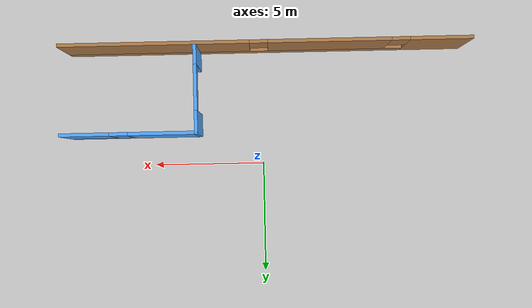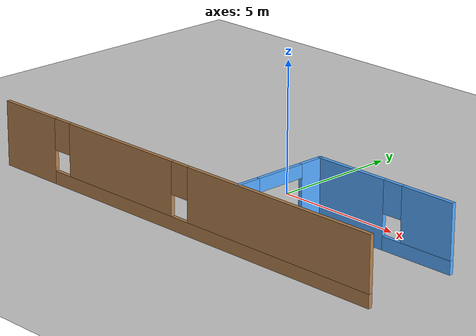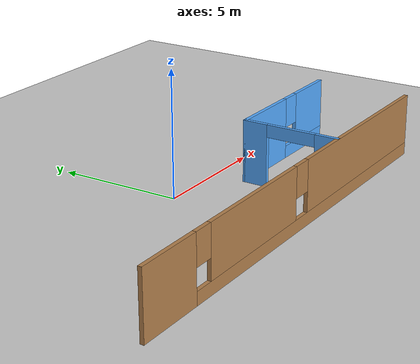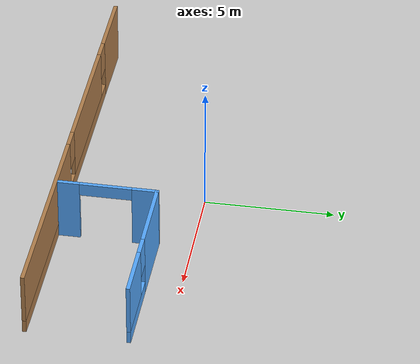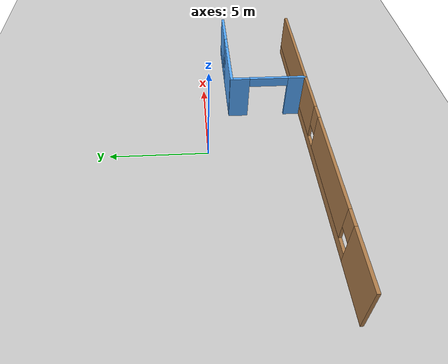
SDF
<sdf version="1.6">
 <world name="default">
  <model name="ground_plane">
   <static>1</static>
   <link name="link">
    <collision name="collision">
     <geometry><plane><normal>0 0 1</normal><size>100 100</size></plane></geometry>
     <surface><friction><ode><mu>100</mu><mu2>50</mu2></ode></friction></surface>
    </collision>
    <visual name="visual">
     <cast_shadows>0</cast_shadows>
     <geometry><plane><normal>0 0 1</normal><size>100 100</size></plane></geometry>
     <material>
      <script><uri>file://media/materials/scripts/gazebo.material</uri><name>Gazebo/Grey</name></script>
     </material>
    </visual>
   </link>
  </model>
  <model name="mybuilding">
   <link name="Wall_26">
    <pose>0.01789 -5.925 0 0 -0 0</pose>
    <visual name="Wall_26_Visual_0">
     <pose>-7.63172 0 1.25 0 -0 0</pose>
     <geometry><box><size>2.73657 0.15 2.5</size></box></geometry>
     <material>
      <script><uri>file://media/materials/scripts/gazebo.material</uri><name>Gazebo/Wood</name></script>
      <ambient>1 1 1 1</ambient>
      <shader type="pixel"/>
      <diffuse>1 1 1 1</diffuse>
      <specular>0.2 0.2 0.2 1</specular>
      <emissive>0 0 0 1</emissive>
     </material>
     <meta><layer>0</layer></meta>
    </visual>
    <visual name="Wall_26_Visual_1">
     <pose>1.36828 0 0.25 0 -0 0</pose>
     <geometry><box><size>15.2634 0.15 0.5</size></box></geometry>
     <material>
      <script><uri>file://media/materials/scripts/gazebo.material</uri><name>Gazebo/Wood</name></script>
      <ambient>1 1 1 1</ambient>
      <shader type="pixel"/>
      <diffuse>1 1 1 1</diffuse>
      <specular>0.2 0.2 0.2 1</specular>
      <emissive>0 0 0 1</emissive>
     </material>
     <meta><layer>0</layer></meta>
    </visual>
    <visual name="Wall_26_Visual_2">
     <pose>-2.78311 0 1.5 0 -0 0</pose>
     <geometry><box><size>5.36064 0.15 2</size></box></geometry>
     <material>
      <script><uri>file://media/materials/scripts/gazebo.material</uri><name>Gazebo/Wood</name></script>
      <ambient>1 1 1 1</ambient>
      <shader type="pixel"/>
      <diffuse>1 1 1 1</diffuse>
      <specular>0.2 0.2 0.2 1</specular>
      <emissive>0 0 0 1</emissive>
     </material>
     <meta><layer>0</layer></meta>
    </visual>
    <visual name="Wall_26_Visual_3">
     <pose>4.8486 0 1.5 0 -0 0</pose>
     <geometry><box><size>8.3028 0.15 2</size></box></geometry>
     <material>
      <script><uri>file://media/materials/scripts/gazebo.material</uri><name>Gazebo/Wood</name></script>
      <ambient>1 1 1 1</ambient>
      <shader type="pixel"/>
      <diffuse>1 1 1 1</diffuse>
      <specular>0.2 0.2 0.2 1</specular>
      <emissive>0 0 0 1</emissive>
     </material>
     <meta><layer>0</layer></meta>
    </visual>
    <visual name="Wall_26_Visual_4">
     <pose>-5.86343 0 1.9 0 -0 0</pose>
     <geometry><box><size>0.8 0.15 1.2</size></box></geometry>
     <material>
      <script><uri>file://media/materials/scripts/gazebo.material</uri><name>Gazebo/Wood</name></script>
      <ambient>1 1 1 1</ambient>
      <shader type="pixel"/>
      <diffuse>1 1 1 1</diffuse>
      <specular>0.2 0.2 0.2 1</specular>
      <emissive>0 0 0 1</emissive>
     </material>
     <meta><layer>0</layer></meta>
    </visual>
    <visual name="Wall_26_Visual_5">
     <pose>0.297204 0 1.9 0 -0 0</pose>
     <geometry><box><size>0.8 0.15 1.2</size></box></geometry>
     <material>
      <script><uri>file://media/materials/scripts/gazebo.material</uri><name>Gazebo/Wood</name></script>
      <ambient>1 1 1 1</ambient>
      <shader type="pixel"/>
      <diffuse>1 1 1 1</diffuse>
      <specular>0.2 0.2 0.2 1</specular>
      <emissive>0 0 0 1</emissive>
     </material>
     <meta><layer>0</layer></meta>
    </visual>
    <collision name="Wall_26_Collision_0">
     <pose>-7.63172 0 1.25 0 -0 0</pose>
     <geometry><box><size>2.73657 0.15 2.5</size></box></geometry>
     <surface>
      <friction>
       <ode><mu>1</mu><mu2>1</mu2><fdir1>0 0 0</fdir1><slip1>0</slip1><slip2>0</slip2></ode>
       <torsional>
        <coefficient>1</coefficient>
        <patch_radius>0</patch_radius>
        <surface_radius>0</surface_radius>
        <use_patch_radius>1</use_patch_radius>
        <ode><slip>0</slip></ode>
       </torsional>
      </friction>
      <bounce><restitution_coefficient>0</restitution_coefficient><threshold>1e+06</threshold></bounce>
      <contact>
       <collide_without_contact>0</collide_without_contact>
       <collide_without_contact_bitmask>1</collide_without_contact_bitmask>
       <collide_bitmask>1</collide_bitmask>
       <ode>
        <soft_cfm>0</soft_cfm>
        <soft_erp>0.2</soft_erp>
        <kp>1e+13</kp>
        <kd>1</kd>
        <max_vel>0.01</max_vel>
        <min_depth>0</min_depth>
       </ode>
       <bullet>
        <split_impulse>1</split_impulse>
        <split_impulse_penetration_threshold>-0.01</split_impulse_penetration_threshold>
        <soft_cfm>0</soft_cfm>
        <soft_erp>0.2</soft_erp>
        <kp>1e+13</kp>
        <kd>1</kd>
       </bullet>
      </contact>
     </surface>
    </collision>
    <collision name="Wall_26_Collision_1">
     <pose>1.36828 0 0.25 0 -0 0</pose>
     <geometry><box><size>15.2634 0.15 0.5</size></box></geometry>
     <surface>
      <friction>
       <ode><mu>1</mu><mu2>1</mu2><fdir1>0 0 0</fdir1><slip1>0</slip1><slip2>0</slip2></ode>
       <torsional>
        <coefficient>1</coefficient>
        <patch_radius>0</patch_radius>
        <surface_radius>0</surface_radius>
        <use_patch_radius>1</use_patch_radius>
        <ode><slip>0</slip></ode>
       </torsional>
      </friction>
      <bounce><restitution_coefficient>0</restitution_coefficient><threshold>1e+06</threshold></bounce>
      <contact>
       <collide_without_contact>0</collide_without_contact>
       <collide_without_contact_bitmask>1</collide_without_contact_bitmask>
       <collide_bitmask>1</collide_bitmask>
       <ode>
        <soft_cfm>0</soft_cfm>
        <soft_erp>0.2</soft_erp>
        <kp>1e+13</kp>
        <kd>1</kd>
        <max_vel>0.01</max_vel>
        <min_depth>0</min_depth>
       </ode>
       <bullet>
        <split_impulse>1</split_impulse>
        <split_impulse_penetration_threshold>-0.01</split_impulse_penetration_threshold>
        <soft_cfm>0</soft_cfm>
        <soft_erp>0.2</soft_erp>
        <kp>1e+13</kp>
        <kd>1</kd>
       </bullet>
      </contact>
     </surface>
    </collision>
    <collision name="Wall_26_Collision_2">
     <pose>-2.78311 0 1.5 0 -0 0</pose>
     <geometry><box><size>5.36064 0.15 2</size></box></geometry>
     <surface>
      <friction>
       <ode><mu>1</mu><mu2>1</mu2><fdir1>0 0 0</fdir1><slip1>0</slip1><slip2>0</slip2></ode>
       <torsional>
        <coefficient>1</coefficient>
        <patch_radius>0</patch_radius>
        <surface_radius>0</surface_radius>
        <use_patch_radius>1</use_patch_radius>
        <ode><slip>0</slip></ode>
       </torsional>
      </friction>
      <bounce><restitution_coefficient>0</restitution_coefficient><threshold>1e+06</threshold></bounce>
      <contact>
       <collide_without_contact>0</collide_without_contact>
       <collide_without_contact_bitmask>1</collide_without_contact_bitmask>
       <collide_bitmask>1</collide_bitmask>
       <ode>
        <soft_cfm>0</soft_cfm>
        <soft_erp>0.2</soft_erp>
        <kp>1e+13</kp>
        <kd>1</kd>
        <max_vel>0.01</max_vel>
        <min_depth>0</min_depth>
       </ode>
       <bullet>
        <split_impulse>1</split_impulse>
        <split_impulse_penetration_threshold>-0.01</split_impulse_penetration_threshold>
        <soft_cfm>0</soft_cfm>
        <soft_erp>0.2</soft_erp>
        <kp>1e+13</kp>
        <kd>1</kd>
       </bullet>
      </contact>
     </surface>
    </collision>
    <collision name="Wall_26_Collision_3">
     <pose>4.8486 0 1.5 0 -0 0</pose>
     <geometry><box><size>8.3028 0.15 2</size></box></geometry>
     <surface>
      <friction>
       <ode><mu>1</mu><mu2>1</mu2><fdir1>0 0 0</fdir1><slip1>0</slip1><slip2>0</slip2></ode>
       <torsional>
        <coefficient>1</coefficient>
        <patch_radius>0</patch_radius>
        <surface_radius>0</surface_radius>
        <use_patch_radius>1</use_patch_radius>
        <ode><slip>0</slip></ode>
       </torsional>
      </friction>
      <bounce><restitution_coefficient>0</restitution_coefficient><threshold>1e+06</threshold></bounce>
      <contact>
       <collide_without_contact>0</collide_without_contact>
       <collide_without_contact_bitmask>1</collide_without_contact_bitmask>
       <collide_bitmask>1</collide_bitmask>
       <ode>
        <soft_cfm>0</soft_cfm>
        <soft_erp>0.2</soft_erp>
        <kp>1e+13</kp>
        <kd>1</kd>
        <max_vel>0.01</max_vel>
        <min_depth>0</min_depth>
       </ode>
       <bullet>
        <split_impulse>1</split_impulse>
        <split_impulse_penetration_threshold>-0.01</split_impulse_penetration_threshold>
        <soft_cfm>0</soft_cfm>
        <soft_erp>0.2</soft_erp>
        <kp>1e+13</kp>
        <kd>1</kd>
       </bullet>
      </contact>
     </surface>
    </collision>
    <collision name="Wall_26_Collision_4">
     <pose>-5.86343 0 1.9 0 -0 0</pose>
     <geometry><box><size>0.8 0.15 1.2</size></box></geometry>
     <surface>
      <friction>
       <ode><mu>1</mu><mu2>1</mu2><fdir1>0 0 0</fdir1><slip1>0</slip1><slip2>0</slip2></ode>
       <torsional>
        <coefficient>1</coefficient>
        <patch_radius>0</patch_radius>
        <surface_radius>0</surface_radius>
        <use_patch_radius>1</use_patch_radius>
        <ode><slip>0</slip></ode>
       </torsional>
      </friction>
      <bounce><restitution_coefficient>0</restitution_coefficient><threshold>1e+06</threshold></bounce>
      <contact>
       <collide_without_contact>0</collide_without_contact>
       <collide_without_contact_bitmask>1</collide_without_contact_bitmask>
       <collide_bitmask>1</collide_bitmask>
       <ode>
        <soft_cfm>0</soft_cfm>
        <soft_erp>0.2</soft_erp>
        <kp>1e+13</kp>
        <kd>1</kd>
        <max_vel>0.01</max_vel>
        <min_depth>0</min_depth>
       </ode>
       <bullet>
        <split_impulse>1</split_impulse>
        <split_impulse_penetration_threshold>-0.01</split_impulse_penetration_threshold>
        <soft_cfm>0</soft_cfm>
        <soft_erp>0.2</soft_erp>
        <kp>1e+13</kp>
        <kd>1</kd>
       </bullet>
      </contact>
     </surface>
    </collision>
    <collision name="Wall_26_Collision_5">
     <pose>0.297204 0 1.9 0 -0 0</pose>
     <geometry><box><size>0.8 0.15 1.2</size></box></geometry>
     <surface>
      <friction>
       <ode><mu>1</mu><mu2>1</mu2><fdir1>0 0 0</fdir1><slip1>0</slip1><slip2>0</slip2></ode>
       <torsional>
        <coefficient>1</coefficient>
        <patch_radius>0</patch_radius>
        <surface_radius>0</surface_radius>
        <use_patch_radius>1</use_patch_radius>
        <ode><slip>0</slip></ode>
       </torsional>
      </friction>
      <bounce><restitution_coefficient>0</restitution_coefficient><threshold>1e+06</threshold></bounce>
      <contact>
       <collide_without_contact>0</collide_without_contact>
       <collide_without_contact_bitmask>1</collide_without_contact_bitmask>
       <collide_bitmask>1</collide_bitmask>
       <ode>
        <soft_cfm>0</soft_cfm>
        <soft_erp>0.2</soft_erp>
        <kp>1e+13</kp>
        <kd>1</kd>
        <max_vel>0.01</max_vel>
        <min_depth>0</min_depth>
       </ode>
       <bullet>
        <split_impulse>1</split_impulse>
        <split_impulse_penetration_threshold>-0.01</split_impulse_penetration_threshold>
        <soft_cfm>0</soft_cfm>
        <soft_erp>0.2</soft_erp>
        <kp>1e+13</kp>
        <kd>1</kd>
       </bullet>
      </contact>
     </surface>
    </collision>
   </link>
   <link name="Wall_39">
    <pose>3.08427 -3.97901 0 0 -0 1.5708</pose>
    <visual name="Wall_39_Visual_0">
     <pose>-1.51351 0 1.25 0 -0 0</pose>
     <geometry><box><size>0.972974 0.15 2.5</size></box></geometry>
     <material>
      <script><uri>file://media/materials/scripts/gazebo.material</uri><name>Gazebo/Grey</name></script>
      <ambient>0.333333 0.666667 1 1</ambient>
      <shader type="pixel"/>
      <diffuse>0.7 0.7 0.7 1</diffuse>
      <specular>0.01 0.01 0.01 1</specular>
      <emissive>0 0 0 1</emissive>
     </material>
     <meta><layer>0</layer></meta>
    </visual>
    <visual name="Wall_39_Visual_1">
     <pose>1.48649 0 1.25 0 -0 0</pose>
     <geometry><box><size>1.02703 0.15 2.5</size></box></geometry>
     <material>
      <script><uri>file://media/materials/scripts/gazebo.material</uri><name>Gazebo/Grey</name></script>
      <ambient>0.333333 0.666667 1 1</ambient>
      <shader type="pixel"/>
      <diffuse>0.7 0.7 0.7 1</diffuse>
      <specular>0.01 0.01 0.01 1</specular>
      <emissive>0 0 0 1</emissive>
     </material>
     <meta><layer>0</layer></meta>
    </visual>
    <visual name="Wall_39_Visual_2">
     <pose>-0.027026 0 2.25 0 -0 0</pose>
     <geometry><box><size>2 0.15 0.5</size></box></geometry>
     <material>
      <script><uri>file://media/materials/scripts/gazebo.material</uri><name>Gazebo/Grey</name></script>
      <ambient>0.333333 0.666667 1 1</ambient>
      <shader type="pixel"/>
      <diffuse>0.7 0.7 0.7 1</diffuse>
      <specular>0.01 0.01 0.01 1</specular>
      <emissive>0 0 0 1</emissive>
     </material>
     <meta><layer>0</layer></meta>
    </visual>
    <collision name="Wall_39_Collision_0">
     <pose>-1.51351 0 1.25 0 -0 0</pose>
     <geometry><box><size>0.972974 0.15 2.5</size></box></geometry>
     <surface>
      <friction>
       <ode><mu>1</mu><mu2>1</mu2><fdir1>0 0 0</fdir1><slip1>0</slip1><slip2>0</slip2></ode>
       <torsional>
        <coefficient>1</coefficient>
        <patch_radius>0</patch_radius>
        <surface_radius>0</surface_radius>
        <use_patch_radius>1</use_patch_radius>
        <ode><slip>0</slip></ode>
       </torsional>
      </friction>
      <bounce><restitution_coefficient>0</restitution_coefficient><threshold>1e+06</threshold></bounce>
      <contact>
       <collide_without_contact>0</collide_without_contact>
       <collide_without_contact_bitmask>1</collide_without_contact_bitmask>
       <collide_bitmask>1</collide_bitmask>
       <ode>
        <soft_cfm>0</soft_cfm>
        <soft_erp>0.2</soft_erp>
        <kp>1e+13</kp>
        <kd>1</kd>
        <max_vel>0.01</max_vel>
        <min_depth>0</min_depth>
       </ode>
       <bullet>
        <split_impulse>1</split_impulse>
        <split_impulse_penetration_threshold>-0.01</split_impulse_penetration_threshold>
        <soft_cfm>0</soft_cfm>
        <soft_erp>0.2</soft_erp>
        <kp>1e+13</kp>
        <kd>1</kd>
       </bullet>
      </contact>
     </surface>
    </collision>
    <collision name="Wall_39_Collision_2">
     <pose>-0.027026 0 2.25 0 -0 0</pose>
     <geometry><box><size>2 0.15 0.5</size></box></geometry>
     <surface>
      <friction>
       <ode><mu>1</mu><mu2>1</mu2><fdir1>0 0 0</fdir1><slip1>0</slip1><slip2>0</slip2></ode>
       <torsional>
        <coefficient>1</coefficient>
        <patch_radius>0</patch_radius>
        <surface_radius>0</surface_radius>
        <use_patch_radius>1</use_patch_radius>
        <ode><slip>0</slip></ode>
       </torsional>
      </friction>
      <bounce><restitution_coefficient>0</restitution_coefficient><threshold>1e+06</threshold></bounce>
      <contact>
       <collide_without_contact>0</collide_without_contact>
       <collide_without_contact_bitmask>1</collide_without_contact_bitmask>
       <collide_bitmask>1</collide_bitmask>
       <ode>
        <soft_cfm>0</soft_cfm>
        <soft_erp>0.2</soft_erp>
        <kp>1e+13</kp>
        <kd>1</kd>
        <max_vel>0.01</max_vel>
        <min_depth>0</min_depth>
       </ode>
       <bullet>
        <split_impulse>1</split_impulse>
        <split_impulse_penetration_threshold>-0.01</split_impulse_penetration_threshold>
        <soft_cfm>0</soft_cfm>
        <soft_erp>0.2</soft_erp>
        <kp>1e+13</kp>
        <kd>1</kd>
       </bullet>
      </contact>
     </surface>
    </collision>
    <collision name="Wall_39_Collision_1">
     <pose>1.48649 0 1.25 0 -0 0</pose>
     <geometry><box><size>1.02703 0.15 2.5</size></box></geometry>
     <surface>
      <friction>
       <ode><mu>1</mu><mu2>1</mu2><fdir1>0 0 0</fdir1><slip1>0</slip1><slip2>0</slip2></ode>
       <torsional>
        <coefficient>1</coefficient>
        <patch_radius>0</patch_radius>
        <surface_radius>0</surface_radius>
        <use_patch_radius>1</use_patch_radius>
        <ode><slip>0</slip></ode>
       </torsional>
      </friction>
      <bounce><restitution_coefficient>0</restitution_coefficient><threshold>1e+06</threshold></bounce>
      <contact>
       <collide_without_contact>0</collide_without_contact>
       <collide_without_contact_bitmask>1</collide_without_contact_bitmask>
       <collide_bitmask>1</collide_bitmask>
       <ode>
        <soft_cfm>0</soft_cfm>
        <soft_erp>0.2</soft_erp>
        <kp>1e+13</kp>
        <kd>1</kd>
        <max_vel>0.01</max_vel>
        <min_depth>0</min_depth>
       </ode>
       <bullet>
        <split_impulse>1</split_impulse>
        <split_impulse_penetration_threshold>-0.01</split_impulse_penetration_threshold>
        <soft_cfm>0</soft_cfm>
        <soft_erp>0.2</soft_erp>
        <kp>1e+13</kp>
        <kd>1</kd>
       </bullet>
      </contact>
     </surface>
    </collision>
   </link>
   <link name="Wall_40">
    <pose>6.00927 -2.05401 0 0 -0 0</pose>
    <visual name="Wall_40_Visual_0">
     <pose>-1.48233 0 1.25 0 -0 0</pose>
     <geometry><box><size>3.03535 0.15 2.5</size></box></geometry>
     <material>
      <script><uri>file://media/materials/scripts/gazebo.material</uri><name>Gazebo/Grey</name></script>
      <ambient>0.333333 0.666667 1 1</ambient>
      <shader type="pixel"/>
      <diffuse>0.7 0.7 0.7 1</diffuse>
      <specular>0.01 0.01 0.01 1</specular>
      <emissive>0 0 0 1</emissive>
     </material>
     <meta><layer>0</layer></meta>
    </visual>
    <visual name="Wall_40_Visual_1">
     <pose>1.51767 0 0.25 0 -0 0</pose>
     <geometry><box><size>2.96465 0.15 0.5</size></box></geometry>
     <material>
      <script><uri>file://media/materials/scripts/gazebo.material</uri><name>Gazebo/Grey</name></script>
      <ambient>0.333333 0.666667 1 1</ambient>
      <shader type="pixel"/>
      <diffuse>0.7 0.7 0.7 1</diffuse>
      <specular>0.01 0.01 0.01 1</specular>
      <emissive>0 0 0 1</emissive>
     </material>
     <meta><layer>0</layer></meta>
    </visual>
    <visual name="Wall_40_Visual_2">
     <pose>1.91767 0 1.5 0 -0 0</pose>
     <geometry><box><size>2.16465 0.15 2</size></box></geometry>
     <material>
      <script><uri>file://media/materials/scripts/gazebo.material</uri><name>Gazebo/Grey</name></script>
      <ambient>0.333333 0.666667 1 1</ambient>
      <shader type="pixel"/>
      <diffuse>0.7 0.7 0.7 1</diffuse>
      <specular>0.01 0.01 0.01 1</specular>
      <emissive>0 0 0 1</emissive>
     </material>
     <meta><layer>0</layer></meta>
    </visual>
    <visual name="Wall_40_Visual_3">
     <pose>0.435348 0 1.9 0 -0 0</pose>
     <geometry><box><size>0.8 0.15 1.2</size></box></geometry>
     <material>
      <script><uri>file://media/materials/scripts/gazebo.material</uri><name>Gazebo/Grey</name></script>
      <ambient>0.333333 0.666667 1 1</ambient>
      <shader type="pixel"/>
      <diffuse>0.7 0.7 0.7 1</diffuse>
      <specular>0.01 0.01 0.01 1</specular>
      <emissive>0 0 0 1</emissive>
     </material>
     <meta><layer>0</layer></meta>
    </visual>
    <collision name="Wall_40_Collision_0">
     <pose>-1.48233 0 1.25 0 -0 0</pose>
     <geometry><box><size>3.03535 0.15 2.5</size></box></geometry>
     <surface>
      <friction>
       <ode><mu>1</mu><mu2>1</mu2><fdir1>0 0 0</fdir1><slip1>0</slip1><slip2>0</slip2></ode>
       <torsional>
        <coefficient>1</coefficient>
        <patch_radius>0</patch_radius>
        <surface_radius>0</surface_radius>
        <use_patch_radius>1</use_patch_radius>
        <ode><slip>0</slip></ode>
       </torsional>
      </friction>
      <bounce><restitution_coefficient>0</restitution_coefficient><threshold>1e+06</threshold></bounce>
      <contact>
       <collide_without_contact>0</collide_without_contact>
       <collide_without_contact_bitmask>1</collide_without_contact_bitmask>
       <collide_bitmask>1</collide_bitmask>
       <ode>
        <soft_cfm>0</soft_cfm>
        <soft_erp>0.2</soft_erp>
        <kp>1e+13</kp>
        <kd>1</kd>
        <max_vel>0.01</max_vel>
        <min_depth>0</min_depth>
       </ode>
       <bullet>
        <split_impulse>1</split_impulse>
        <split_impulse_penetration_threshold>-0.01</split_impulse_penetration_threshold>
        <soft_cfm>0</soft_cfm>
        <soft_erp>0.2</soft_erp>
        <kp>1e+13</kp>
        <kd>1</kd>
       </bullet>
      </contact>
     </surface>
    </collision>
    <collision name="Wall_40_Collision_1">
     <pose>1.51767 0 0.25 0 -0 0</pose>
     <geometry><box><size>2.96465 0.15 0.5</size></box></geometry>
     <surface>
      <friction>
       <ode><mu>1</mu><mu2>1</mu2><fdir1>0 0 0</fdir1><slip1>0</slip1><slip2>0</slip2></ode>
       <torsional>
        <coefficient>1</coefficient>
        <patch_radius>0</patch_radius>
        <surface_radius>0</surface_radius>
        <use_patch_radius>1</use_patch_radius>
        <ode><slip>0</slip></ode>
       </torsional>
      </friction>
      <bounce><restitution_coefficient>0</restitution_coefficient><threshold>1e+06</threshold></bounce>
      <contact>
       <collide_without_contact>0</collide_without_contact>
       <collide_without_contact_bitmask>1</collide_without_contact_bitmask>
       <collide_bitmask>1</collide_bitmask>
       <ode>
        <soft_cfm>0</soft_cfm>
        <soft_erp>0.2</soft_erp>
        <kp>1e+13</kp>
        <kd>1</kd>
        <max_vel>0.01</max_vel>
        <min_depth>0</min_depth>
       </ode>
       <bullet>
        <split_impulse>1</split_impulse>
        <split_impulse_penetration_threshold>-0.01</split_impulse_penetration_threshold>
        <soft_cfm>0</soft_cfm>
        <soft_erp>0.2</soft_erp>
        <kp>1e+13</kp>
        <kd>1</kd>
       </bullet>
      </contact>
     </surface>
    </collision>
    <collision name="Wall_40_Collision_2">
     <pose>1.91767 0 1.5 0 -0 0</pose>
     <geometry><box><size>2.16465 0.15 2</size></box></geometry>
     <surface>
      <friction>
       <ode><mu>1</mu><mu2>1</mu2><fdir1>0 0 0</fdir1><slip1>0</slip1><slip2>0</slip2></ode>
       <torsional>
        <coefficient>1</coefficient>
        <patch_radius>0</patch_radius>
        <surface_radius>0</surface_radius>
        <use_patch_radius>1</use_patch_radius>
        <ode><slip>0</slip></ode>
       </torsional>
      </friction>
      <bounce><restitution_coefficient>0</restitution_coefficient><threshold>1e+06</threshold></bounce>
      <contact>
       <collide_without_contact>0</collide_without_contact>
       <collide_without_contact_bitmask>1</collide_without_contact_bitmask>
       <collide_bitmask>1</collide_bitmask>
       <ode>
        <soft_cfm>0</soft_cfm>
        <soft_erp>0.2</soft_erp>
        <kp>1e+13</kp>
        <kd>1</kd>
        <max_vel>0.01</max_vel>
        <min_depth>0</min_depth>
       </ode>
       <bullet>
        <split_impulse>1</split_impulse>
        <split_impulse_penetration_threshold>-0.01</split_impulse_penetration_threshold>
        <soft_cfm>0</soft_cfm>
        <soft_erp>0.2</soft_erp>
        <kp>1e+13</kp>
        <kd>1</kd>
       </bullet>
      </contact>
     </surface>
    </collision>
    <collision name="Wall_40_Collision_3">
     <pose>0.435348 0 1.9 0 -0 0</pose>
     <geometry><box><size>0.8 0.15 1.2</size></box></geometry>
     <surface>
      <friction>
       <ode><mu>1</mu><mu2>1</mu2><fdir1>0 0 0</fdir1><slip1>0</slip1><slip2>0</slip2></ode>
       <torsional>
        <coefficient>1</coefficient>
        <patch_radius>0</patch_radius>
        <surface_radius>0</surface_radius>
        <use_patch_radius>1</use_patch_radius>
        <ode><slip>0</slip></ode>
       </torsional>
      </friction>
      <bounce><restitution_coefficient>0</restitution_coefficient><threshold>1e+06</threshold></bounce>
      <contact>
       <collide_without_contact>0</collide_without_contact>
       <collide_without_contact_bitmask>1</collide_without_contact_bitmask>
       <collide_bitmask>1</collide_bitmask>
       <ode>
        <soft_cfm>0</soft_cfm>
        <soft_erp>0.2</soft_erp>
        <kp>1e+13</kp>
        <kd>1</kd>
        <max_vel>0.01</max_vel>
        <min_depth>0</min_depth>
       </ode>
       <bullet>
        <split_impulse>1</split_impulse>
        <split_impulse_penetration_threshold>-0.01</split_impulse_penetration_threshold>
        <soft_cfm>0</soft_cfm>
        <soft_erp>0.2</soft_erp>
        <kp>1e+13</kp>
        <kd>1</kd>
       </bullet>
      </contact>
     </surface>
    </collision>
   </link>
   <static>1</static>
   <pose>-0.19515 0.703021 0 0 -0 0</pose>
  </model>
 </world>
</sdf>
